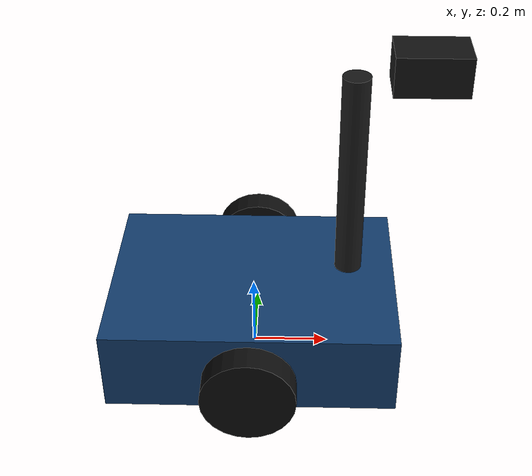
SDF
<?xml version="1.0" ?>
<sdf version="1.9">
  <model name="rescue_robot">

    <!-- NeuroMemory Rescue Robot Model Skeleton                -->
    <!-- Differential-drive style body + camera sensor           -->

    <pose>0 0 0.12 0 0 0</pose>

    <link name="base_link">
      <inertial>
        <mass>8.0</mass>
        <inertia>
          <ixx>0.15</ixx>
          <iyy>0.18</iyy>
          <izz>0.25</izz>
          <ixy>0</ixy>
          <ixz>0</ixz>
          <iyz>0</iyz>
        </inertia>
      </inertial>

      <collision name="base_collision">
        <geometry>
          <box>
            <size>0.75 0.55 0.22</size>
          </box>
        </geometry>
      </collision>

      <visual name="base_visual">
        <geometry>
          <box>
            <size>0.75 0.55 0.22</size>
          </box>
        </geometry>
        <material>
          <ambient>0.05 0.15 0.28 1</ambient>
          <diffuse>0.08 0.25 0.45 1</diffuse>
        </material>
      </visual>
    </link>

    <!-- Left wheel -->
    <link name="left_wheel">
      <pose>0 0.34 0.0 1.5708 0 0</pose>
      <inertial>
        <mass>0.8</mass>
        <inertia>
          <ixx>0.01</ixx>
          <iyy>0.01</iyy>
          <izz>0.01</izz>
          <ixy>0</ixy>
          <ixz>0</ixz>
          <iyz>0</iyz>
        </inertia>
      </inertial>

      <collision name="collision">
        <geometry>
          <cylinder>
            <radius>0.12</radius>
            <length>0.07</length>
          </cylinder>
        </geometry>
      </collision>

      <visual name="visual">
        <geometry>
          <cylinder>
            <radius>0.12</radius>
            <length>0.07</length>
          </cylinder>
        </geometry>
        <material>
          <ambient>0.02 0.02 0.02 1</ambient>
          <diffuse>0.05 0.05 0.05 1</diffuse>
        </material>
      </visual>
    </link>

    <!-- Right wheel -->
    <link name="right_wheel">
      <pose>0 -0.34 0.0 1.5708 0 0</pose>
      <inertial>
        <mass>0.8</mass>
        <inertia>
          <ixx>0.01</ixx>
          <iyy>0.01</iyy>
          <izz>0.01</izz>
          <ixy>0</ixy>
          <ixz>0</ixz>
          <iyz>0</iyz>
        </inertia>
      </inertial>

      <collision name="collision">
        <geometry>
          <cylinder>
            <radius>0.12</radius>
            <length>0.07</length>
          </cylinder>
        </geometry>
      </collision>

      <visual name="visual">
        <geometry>
          <cylinder>
            <radius>0.12</radius>
            <length>0.07</length>
          </cylinder>
        </geometry>
        <material>
          <ambient>0.02 0.02 0.02 1</ambient>
          <diffuse>0.05 0.05 0.05 1</diffuse>
        </material>
      </visual>
    </link>

    <!-- Front caster -->
    <link name="front_caster">
      <pose>0.32 0 0.0 0 0 0</pose>
      <collision name="collision">
        <geometry>
          <sphere>
            <radius>0.07</radius>
          </sphere>
        </geometry>
      </collision>
      <visual name="visual">
        <geometry>
          <sphere>
            <radius>0.07</radius>
          </sphere>
        </geometry>
        <material>
          <ambient>0.1 0.1 0.1 1</ambient>
          <diffuse>0.15 0.15 0.15 1</diffuse>
        </material>
      </visual>
    </link>

    <!-- Camera mast -->
    <link name="camera_mast">
      <pose>0.25 0 0.42 0 0 0</pose>
      <collision name="collision">
        <geometry>
          <cylinder>
            <radius>0.035</radius>
            <length>0.55</length>
          </cylinder>
        </geometry>
      </collision>
      <visual name="visual">
        <geometry>
          <cylinder>
            <radius>0.035</radius>
            <length>0.55</length>
          </cylinder>
        </geometry>
        <material>
          <ambient>0.08 0.08 0.08 1</ambient>
          <diffuse>0.1 0.1 0.1 1</diffuse>
        </material>
      </visual>
    </link>

    <!-- Camera link -->
    <link name="camera_link">
      <pose>0.42 0 0.72 0 0 0</pose>

      <visual name="camera_visual">
        <geometry>
          <box>
            <size>0.18 0.12 0.10</size>
          </box>
        </geometry>
        <material>
          <ambient>0.02 0.02 0.02 1</ambient>
          <diffuse>0.08 0.08 0.08 1</diffuse>
        </material>
      </visual>

      <sensor name="front_camera" type="camera">
        <always_on>true</always_on>
        <update_rate>20</update_rate>
        <pose>0 0 0 0 0 0</pose>

        <camera>
          <horizontal_fov>1.047</horizontal_fov>
          <image>
            <width>640</width>
            <height>480</height>
            <format>R8G8B8</format>
          </image>
          <clip>
            <near>0.1</near>
            <far>50</far>
          </clip>
        </camera>

        <topic>/camera/image_raw</topic>
      </sensor>
    </link>

    <!-- Joints -->
    <joint name="left_wheel_joint" type="revolute">
      <parent>base_link</parent>
      <child>left_wheel</child>
      <axis>
        <xyz>0 0 1</xyz>
      </axis>
    </joint>

    <joint name="right_wheel_joint" type="revolute">
      <parent>base_link</parent>
      <child>right_wheel</child>
      <axis>
        <xyz>0 0 1</xyz>
      </axis>
    </joint>

    <joint name="camera_mast_joint" type="fixed">
      <parent>base_link</parent>
      <child>camera_mast</child>
    </joint>

    <joint name="camera_joint" type="fixed">
      <parent>camera_mast</parent>
      <child>camera_link</child>
    </joint>

  </model>
</sdf>
